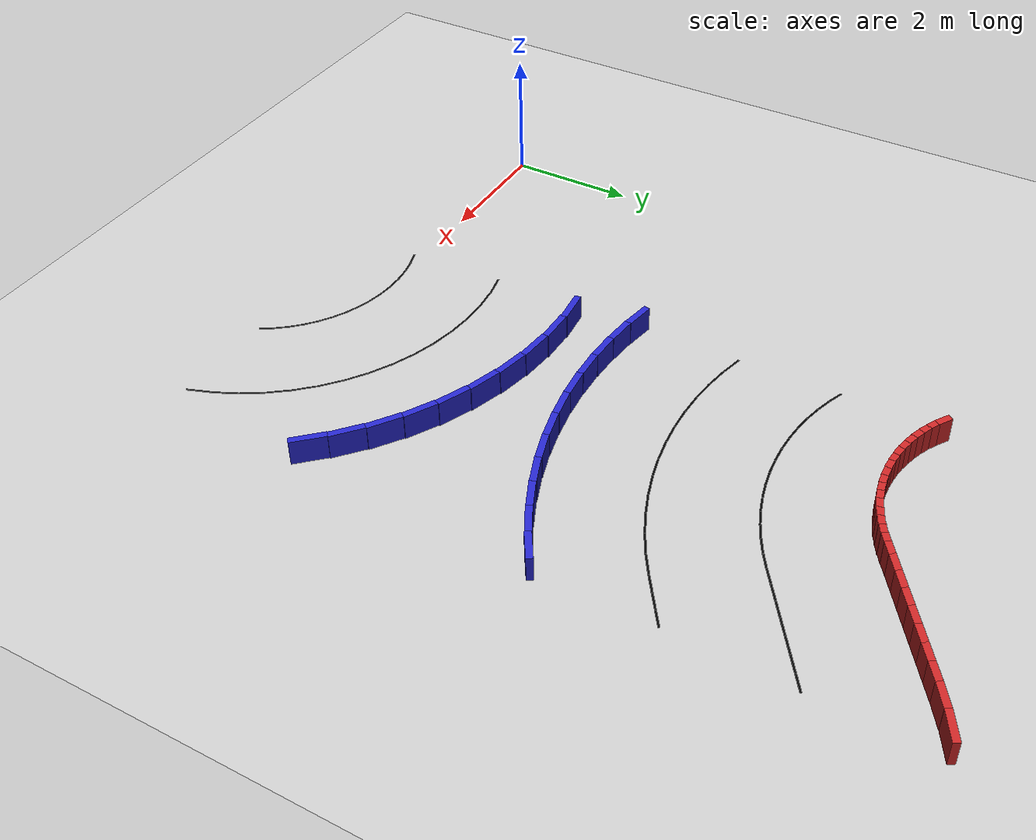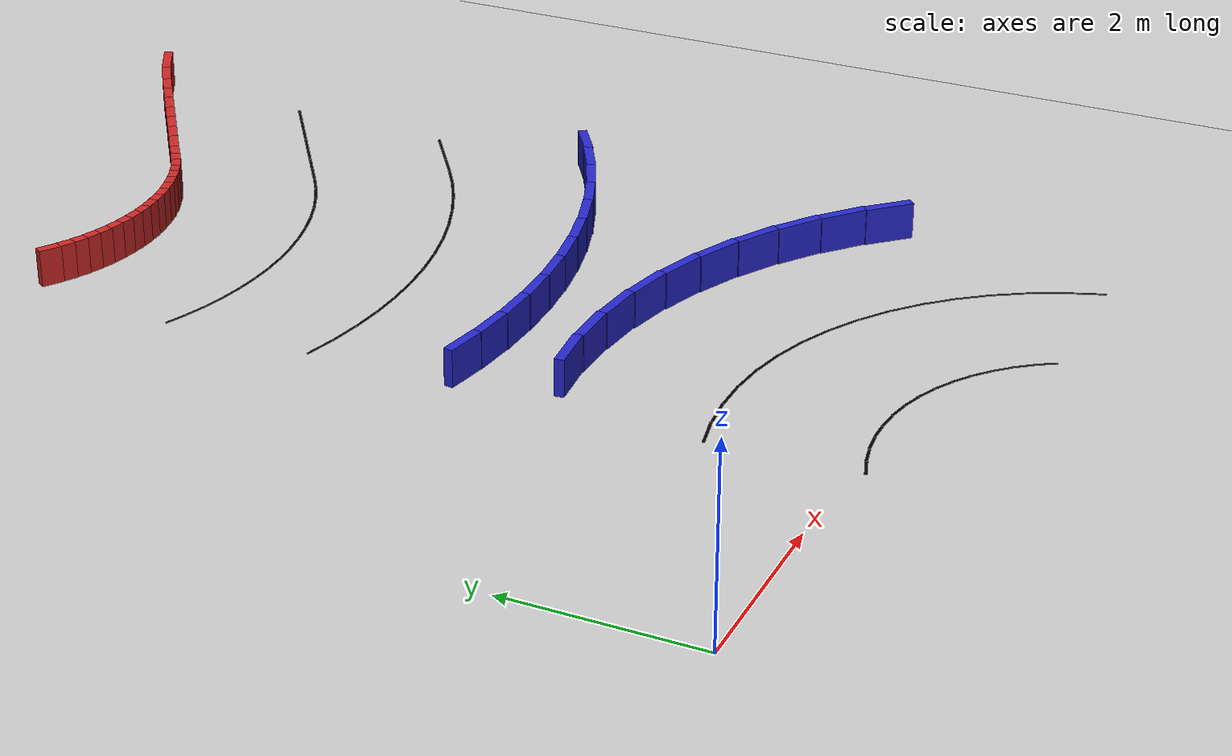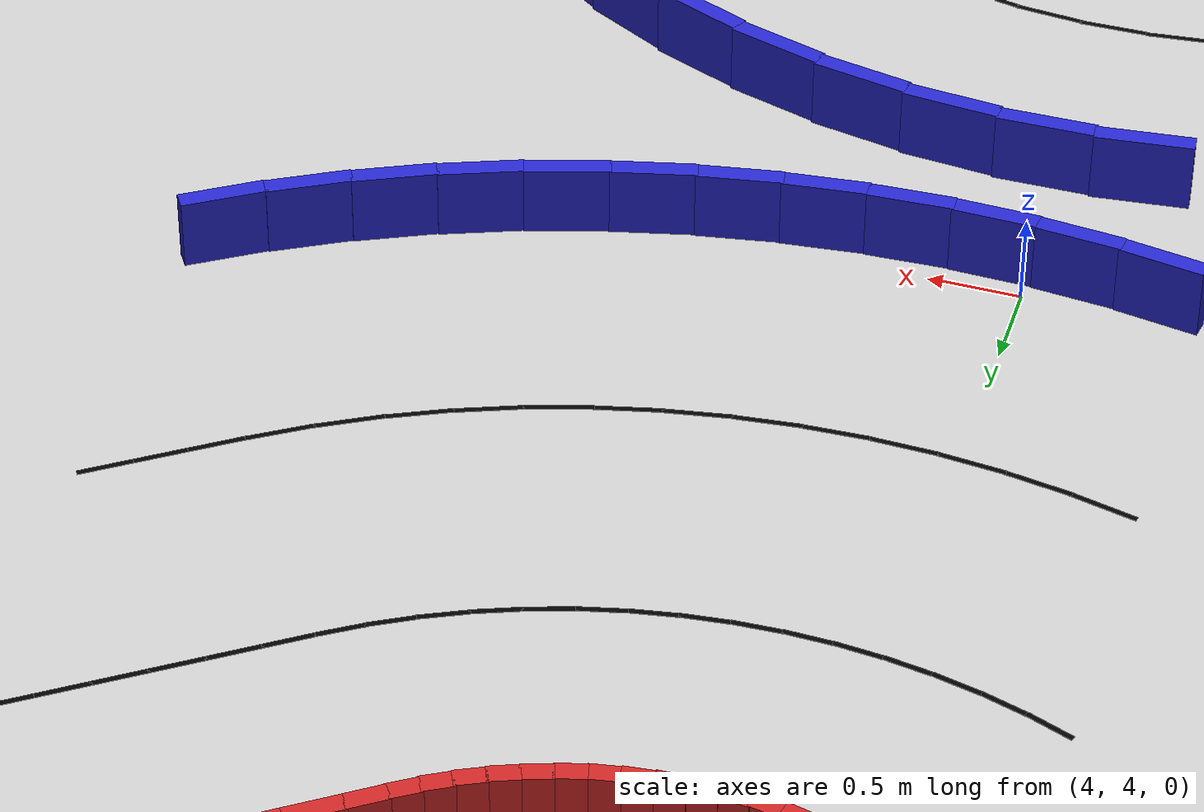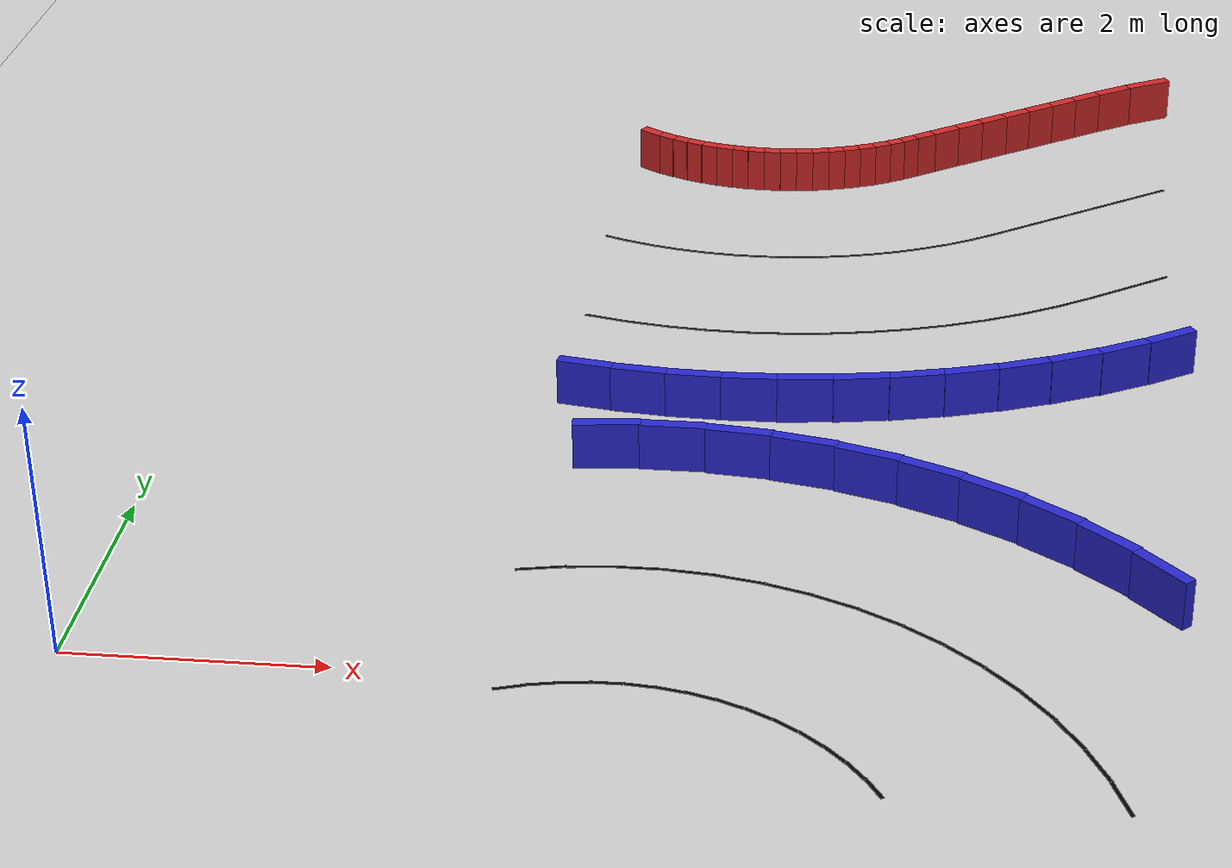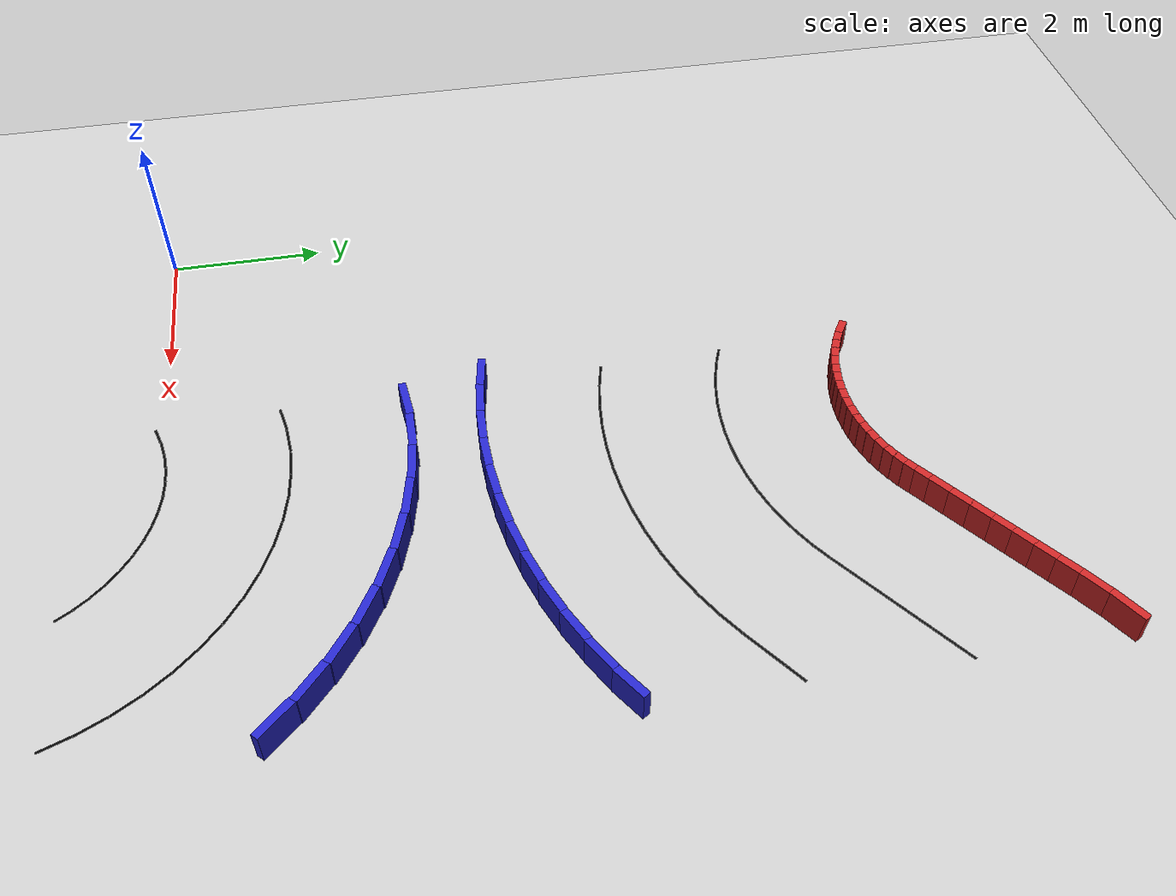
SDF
<sdf version="1.6">
 <world name="3lane_track">
  <include><uri>model://ground_plane</uri></include>
  <include><uri>model://sun</uri></include>
  <model name="iw_88">
   <static>true</static>
   <pose>3.5831 2.9750 0.200 0 0 0.1013</pose>
   <link name="l">
    <collision name="c"><geometry><box><size>0.5416 0.1 0.4</size></box></geometry></collision>
    <visual name="v">
     <geometry><box><size>0.5416 0.1 0.4</size></box></geometry>
     <material><ambient>0.15 0.15 0.8 1</ambient><diffuse>0.15 0.15 0.8 1</diffuse></material>
    </visual>
   </link>
  </model>
  <model name="iw_89">
   <static>true</static>
   <pose>4.1138 2.9904 0.200 0 0 0.0000</pose>
   <link name="l">
    <collision name="c"><geometry><box><size>0.5416 0.1 0.4</size></box></geometry></collision>
    <visual name="v">
     <geometry><box><size>0.5416 0.1 0.4</size></box></geometry>
     <material><ambient>0.15 0.15 0.8 1</ambient><diffuse>0.15 0.15 0.8 1</diffuse></material>
    </visual>
   </link>
  </model>
  <model name="iw_90">
   <static>true</static>
   <pose>4.6434 2.9520 0.200 0 0 -0.1013</pose>
   <link name="l">
    <collision name="c"><geometry><box><size>0.5416 0.1 0.4</size></box></geometry></collision>
    <visual name="v">
     <geometry><box><size>0.5416 0.1 0.4</size></box></geometry>
     <material><ambient>0.15 0.15 0.8 1</ambient><diffuse>0.15 0.15 0.8 1</diffuse></material>
    </visual>
   </link>
  </model>
  <model name="iw_91">
   <static>true</static>
   <pose>5.1664 2.8602 0.200 0 0 -0.2027</pose>
   <link name="l">
    <collision name="c"><geometry><box><size>0.5416 0.1 0.4</size></box></geometry></collision>
    <visual name="v">
     <geometry><box><size>0.5416 0.1 0.4</size></box></geometry>
     <material><ambient>0.15 0.15 0.8 1</ambient><diffuse>0.15 0.15 0.8 1</diffuse></material>
    </visual>
   </link>
  </model>
  <model name="iw_92">
   <static>true</static>
   <pose>5.6774 2.7160 0.200 0 0 -0.3040</pose>
   <link name="l">
    <collision name="c"><geometry><box><size>0.5416 0.1 0.4</size></box></geometry></collision>
    <visual name="v">
     <geometry><box><size>0.5416 0.1 0.4</size></box></geometry>
     <material><ambient>0.15 0.15 0.8 1</ambient><diffuse>0.15 0.15 0.8 1</diffuse></material>
    </visual>
   </link>
  </model>
  <model name="iw_93">
   <static>true</static>
   <pose>6.1712 2.5208 0.200 0 0 -0.4054</pose>
   <link name="l">
    <collision name="c"><geometry><box><size>0.5416 0.1 0.4</size></box></geometry></collision>
    <visual name="v">
     <geometry><box><size>0.5416 0.1 0.4</size></box></geometry>
     <material><ambient>0.15 0.15 0.8 1</ambient><diffuse>0.15 0.15 0.8 1</diffuse></material>
    </visual>
   </link>
  </model>
  <model name="iw_94">
   <static>true</static>
   <pose>6.6427 2.2767 0.200 0 0 -0.5067</pose>
   <link name="l">
    <collision name="c"><geometry><box><size>0.5416 0.1 0.4</size></box></geometry></collision>
    <visual name="v">
     <geometry><box><size>0.5416 0.1 0.4</size></box></geometry>
     <material><ambient>0.15 0.15 0.8 1</ambient><diffuse>0.15 0.15 0.8 1</diffuse></material>
    </visual>
   </link>
  </model>
  <model name="iw_95">
   <static>true</static>
   <pose>7.0871 1.9861 0.200 0 0 -0.6081</pose>
   <link name="l">
    <collision name="c"><geometry><box><size>0.5416 0.1 0.4</size></box></geometry></collision>
    <visual name="v">
     <geometry><box><size>0.5416 0.1 0.4</size></box></geometry>
     <material><ambient>0.15 0.15 0.8 1</ambient><diffuse>0.15 0.15 0.8 1</diffuse></material>
    </visual>
   </link>
  </model>
  <model name="iw_96">
   <static>true</static>
   <pose>7.4998 1.6520 0.200 0 0 -0.7094</pose>
   <link name="l">
    <collision name="c"><geometry><box><size>0.5416 0.1 0.4</size></box></geometry></collision>
    <visual name="v">
     <geometry><box><size>0.5416 0.1 0.4</size></box></geometry>
     <material><ambient>0.15 0.15 0.8 1</ambient><diffuse>0.15 0.15 0.8 1</diffuse></material>
    </visual>
   </link>
  </model>
  <model name="iw_97">
   <static>true</static>
   <pose>7.8766 1.2780 0.200 0 0 -0.8107</pose>
   <link name="l">
    <collision name="c"><geometry><box><size>0.5416 0.1 0.4</size></box></geometry></collision>
    <visual name="v">
     <geometry><box><size>0.5416 0.1 0.4</size></box></geometry>
     <material><ambient>0.15 0.15 0.8 1</ambient><diffuse>0.15 0.15 0.8 1</diffuse></material>
    </visual>
   </link>
  </model>
  <model name="iw_237">
   <static>true</static>
   <pose>8.1097 4.8871 0.200 0 0 -2.5647</pose>
   <link name="l">
    <collision name="c"><geometry><box><size>0.4680 0.1 0.4</size></box></geometry></collision>
    <visual name="v">
     <geometry><box><size>0.4680 0.1 0.4</size></box></geometry>
     <material><ambient>0.15 0.15 0.8 1</ambient><diffuse>0.15 0.15 0.8 1</diffuse></material>
    </visual>
   </link>
  </model>
  <model name="iw_238">
   <static>true</static>
   <pose>7.7152 4.6550 0.200 0 0 -2.6325</pose>
   <link name="l">
    <collision name="c"><geometry><box><size>0.4680 0.1 0.4</size></box></geometry></collision>
    <visual name="v">
     <geometry><box><size>0.4680 0.1 0.4</size></box></geometry>
     <material><ambient>0.15 0.15 0.8 1</ambient><diffuse>0.15 0.15 0.8 1</diffuse></material>
    </visual>
   </link>
  </model>
  <model name="iw_239">
   <static>true</static>
   <pose>7.3058 4.4503 0.200 0 0 -2.7004</pose>
   <link name="l">
    <collision name="c"><geometry><box><size>0.4680 0.1 0.4</size></box></geometry></collision>
    <visual name="v">
     <geometry><box><size>0.4680 0.1 0.4</size></box></geometry>
     <material><ambient>0.15 0.15 0.8 1</ambient><diffuse>0.15 0.15 0.8 1</diffuse></material>
    </visual>
   </link>
  </model>
  <model name="iw_240">
   <static>true</static>
   <pose>6.8835 4.2737 0.200 0 0 -2.7683</pose>
   <link name="l">
    <collision name="c"><geometry><box><size>0.4680 0.1 0.4</size></box></geometry></collision>
    <visual name="v">
     <geometry><box><size>0.4680 0.1 0.4</size></box></geometry>
     <material><ambient>0.15 0.15 0.8 1</ambient><diffuse>0.15 0.15 0.8 1</diffuse></material>
    </visual>
   </link>
  </model>
  <model name="iw_241">
   <static>true</static>
   <pose>6.4502 4.1262 0.200 0 0 -2.8362</pose>
   <link name="l">
    <collision name="c"><geometry><box><size>0.4680 0.1 0.4</size></box></geometry></collision>
    <visual name="v">
     <geometry><box><size>0.4680 0.1 0.4</size></box></geometry>
     <material><ambient>0.15 0.15 0.8 1</ambient><diffuse>0.15 0.15 0.8 1</diffuse></material>
    </visual>
   </link>
  </model>
  <model name="iw_242">
   <static>true</static>
   <pose>6.0078 4.0085 0.200 0 0 -2.9040</pose>
   <link name="l">
    <collision name="c"><geometry><box><size>0.4680 0.1 0.4</size></box></geometry></collision>
    <visual name="v">
     <geometry><box><size>0.4680 0.1 0.4</size></box></geometry>
     <material><ambient>0.15 0.15 0.8 1</ambient><diffuse>0.15 0.15 0.8 1</diffuse></material>
    </visual>
   </link>
  </model>
  <model name="iw_243">
   <static>true</static>
   <pose>5.5585 3.9210 0.200 0 0 -2.9719</pose>
   <link name="l">
    <collision name="c"><geometry><box><size>0.4680 0.1 0.4</size></box></geometry></collision>
    <visual name="v">
     <geometry><box><size>0.4680 0.1 0.4</size></box></geometry>
     <material><ambient>0.15 0.15 0.8 1</ambient><diffuse>0.15 0.15 0.8 1</diffuse></material>
    </visual>
   </link>
  </model>
  <model name="iw_244">
   <static>true</static>
   <pose>5.1043 3.8642 0.200 0 0 -3.0398</pose>
   <link name="l">
    <collision name="c"><geometry><box><size>0.4680 0.1 0.4</size></box></geometry></collision>
    <visual name="v">
     <geometry><box><size>0.4680 0.1 0.4</size></box></geometry>
     <material><ambient>0.15 0.15 0.8 1</ambient><diffuse>0.15 0.15 0.8 1</diffuse></material>
    </visual>
   </link>
  </model>
  <model name="iw_245">
   <static>true</static>
   <pose>4.6473 3.8383 0.200 0 0 -3.1077</pose>
   <link name="l">
    <collision name="c"><geometry><box><size>0.4680 0.1 0.4</size></box></geometry></collision>
    <visual name="v">
     <geometry><box><size>0.4680 0.1 0.4</size></box></geometry>
     <material><ambient>0.15 0.15 0.8 1</ambient><diffuse>0.15 0.15 0.8 1</diffuse></material>
    </visual>
   </link>
  </model>
  <model name="iw_246">
   <static>true</static>
   <pose>4.1896 3.8435 0.200 0 0 3.1077</pose>
   <link name="l">
    <collision name="c"><geometry><box><size>0.4680 0.1 0.4</size></box></geometry></collision>
    <visual name="v">
     <geometry><box><size>0.4680 0.1 0.4</size></box></geometry>
     <material><ambient>0.15 0.15 0.8 1</ambient><diffuse>0.15 0.15 0.8 1</diffuse></material>
    </visual>
   </link>
  </model>
  <model name="iw_247">
   <static>true</static>
   <pose>3.7333 3.8797 0.200 0 0 3.0398</pose>
   <link name="l">
    <collision name="c"><geometry><box><size>0.4680 0.1 0.4</size></box></geometry></collision>
    <visual name="v">
     <geometry><box><size>0.4680 0.1 0.4</size></box></geometry>
     <material><ambient>0.15 0.15 0.8 1</ambient><diffuse>0.15 0.15 0.8 1</diffuse></material>
    </visual>
   </link>
  </model>
  <model name="iw_248">
   <static>true</static>
   <pose>3.2805 3.9468 0.200 0 0 2.9719</pose>
   <link name="l">
    <collision name="c"><geometry><box><size>0.4680 0.1 0.4</size></box></geometry></collision>
    <visual name="v">
     <geometry><box><size>0.4680 0.1 0.4</size></box></geometry>
     <material><ambient>0.15 0.15 0.8 1</ambient><diffuse>0.15 0.15 0.8 1</diffuse></material>
    </visual>
   </link>
  </model>
  <model name="ow_227">
   <static>true</static>
   <pose>8.1463 10.3524 0.200 0 0 -2.6325</pose>
   <link name="l">
    <collision name="c"><geometry><box><size>0.4680 0.1 0.4</size></box></geometry></collision>
    <visual name="v">
     <geometry><box><size>0.4680 0.1 0.4</size></box></geometry>
     <material><ambient>0.8 0.15 0.15 1</ambient><diffuse>0.8 0.15 0.15 1</diffuse></material>
    </visual>
   </link>
  </model>
  <model name="ow_228">
   <static>true</static>
   <pose>7.7880 10.1339 0.200 0 0 -2.5647</pose>
   <link name="l">
    <collision name="c"><geometry><box><size>0.3917 0.1 0.4</size></box></geometry></collision>
    <visual name="v">
     <geometry><box><size>0.3917 0.1 0.4</size></box></geometry>
     <material><ambient>0.8 0.15 0.15 1</ambient><diffuse>0.8 0.15 0.15 1</diffuse></material>
    </visual>
   </link>
  </model>
  <model name="ow_229">
   <static>true</static>
   <pose>7.5132 9.9486 0.200 0 0 -2.5307</pose>
   <link name="l">
    <collision name="c"><geometry><box><size>0.2912 0.1 0.4</size></box></geometry></collision>
    <visual name="v">
     <geometry><box><size>0.2912 0.1 0.4</size></box></geometry>
     <material><ambient>0.8 0.15 0.15 1</ambient><diffuse>0.8 0.15 0.15 1</diffuse></material>
    </visual>
   </link>
  </model>
  <model name="ow_230">
   <static>true</static>
   <pose>7.2828 9.7873 0.200 0 0 -2.5307</pose>
   <link name="l">
    <collision name="c"><geometry><box><size>0.2912 0.1 0.4</size></box></geometry></collision>
    <visual name="v">
     <geometry><box><size>0.2912 0.1 0.4</size></box></geometry>
     <material><ambient>0.8 0.15 0.15 1</ambient><diffuse>0.8 0.15 0.15 1</diffuse></material>
    </visual>
   </link>
  </model>
  <model name="ow_231">
   <static>true</static>
   <pose>7.0524 9.6260 0.200 0 0 -2.5307</pose>
   <link name="l">
    <collision name="c"><geometry><box><size>0.2913 0.1 0.4</size></box></geometry></collision>
    <visual name="v">
     <geometry><box><size>0.2913 0.1 0.4</size></box></geometry>
     <material><ambient>0.8 0.15 0.15 1</ambient><diffuse>0.8 0.15 0.15 1</diffuse></material>
    </visual>
   </link>
  </model>
  <model name="ow_232">
   <static>true</static>
   <pose>6.8220 9.4647 0.200 0 0 -2.5307</pose>
   <link name="l">
    <collision name="c"><geometry><box><size>0.2913 0.1 0.4</size></box></geometry></collision>
    <visual name="v">
     <geometry><box><size>0.2913 0.1 0.4</size></box></geometry>
     <material><ambient>0.8 0.15 0.15 1</ambient><diffuse>0.8 0.15 0.15 1</diffuse></material>
    </visual>
   </link>
  </model>
  <model name="ow_233">
   <static>true</static>
   <pose>6.5916 9.3033 0.200 0 0 -2.5307</pose>
   <link name="l">
    <collision name="c"><geometry><box><size>0.2912 0.1 0.4</size></box></geometry></collision>
    <visual name="v">
     <geometry><box><size>0.2912 0.1 0.4</size></box></geometry>
     <material><ambient>0.8 0.15 0.15 1</ambient><diffuse>0.8 0.15 0.15 1</diffuse></material>
    </visual>
   </link>
  </model>
  <model name="ow_234">
   <static>true</static>
   <pose>6.3612 9.1420 0.200 0 0 -2.5307</pose>
   <link name="l">
    <collision name="c"><geometry><box><size>0.2912 0.1 0.4</size></box></geometry></collision>
    <visual name="v">
     <geometry><box><size>0.2912 0.1 0.4</size></box></geometry>
     <material><ambient>0.8 0.15 0.15 1</ambient><diffuse>0.8 0.15 0.15 1</diffuse></material>
    </visual>
   </link>
  </model>
  <model name="ow_235">
   <static>true</static>
   <pose>6.1308 8.9807 0.200 0 0 -2.5307</pose>
   <link name="l">
    <collision name="c"><geometry><box><size>0.2913 0.1 0.4</size></box></geometry></collision>
    <visual name="v">
     <geometry><box><size>0.2913 0.1 0.4</size></box></geometry>
     <material><ambient>0.8 0.15 0.15 1</ambient><diffuse>0.8 0.15 0.15 1</diffuse></material>
    </visual>
   </link>
  </model>
  <model name="ow_236">
   <static>true</static>
   <pose>5.9321 8.8408 0.200 0 0 -2.5307</pose>
   <link name="l">
    <collision name="c"><geometry><box><size>0.2149 0.1 0.4</size></box></geometry></collision>
    <visual name="v">
     <geometry><box><size>0.2149 0.1 0.4</size></box></geometry>
     <material><ambient>0.8 0.15 0.15 1</ambient><diffuse>0.8 0.15 0.15 1</diffuse></material>
    </visual>
   </link>
  </model>
  <model name="ow_237">
   <static>true</static>
   <pose>5.7859 8.7376 0.200 0 0 -2.5647</pose>
   <link name="l">
    <collision name="c"><geometry><box><size>0.1629 0.1 0.4</size></box></geometry></collision>
    <visual name="v">
     <geometry><box><size>0.1629 0.1 0.4</size></box></geometry>
     <material><ambient>0.8 0.15 0.15 1</ambient><diffuse>0.8 0.15 0.15 1</diffuse></material>
    </visual>
   </link>
  </model>
  <model name="ow_238">
   <static>true</static>
   <pose>5.6579 8.6543 0.200 0 0 -2.6325</pose>
   <link name="l">
    <collision name="c"><geometry><box><size>0.1629 0.1 0.4</size></box></geometry></collision>
    <visual name="v">
     <geometry><box><size>0.1629 0.1 0.4</size></box></geometry>
     <material><ambient>0.8 0.15 0.15 1</ambient><diffuse>0.8 0.15 0.15 1</diffuse></material>
    </visual>
   </link>
  </model>
  <model name="ow_239">
   <static>true</static>
   <pose>5.5245 8.5798 0.200 0 0 -2.7004</pose>
   <link name="l">
    <collision name="c"><geometry><box><size>0.1629 0.1 0.4</size></box></geometry></collision>
    <visual name="v">
     <geometry><box><size>0.1629 0.1 0.4</size></box></geometry>
     <material><ambient>0.8 0.15 0.15 1</ambient><diffuse>0.8 0.15 0.15 1</diffuse></material>
    </visual>
   </link>
  </model>
  <model name="ow_240">
   <static>true</static>
   <pose>5.3863 8.5146 0.200 0 0 -2.7683</pose>
   <link name="l">
    <collision name="c"><geometry><box><size>0.1629 0.1 0.4</size></box></geometry></collision>
    <visual name="v">
     <geometry><box><size>0.1629 0.1 0.4</size></box></geometry>
     <material><ambient>0.8 0.15 0.15 1</ambient><diffuse>0.8 0.15 0.15 1</diffuse></material>
    </visual>
   </link>
  </model>
  <model name="ow_241">
   <static>true</static>
   <pose>5.2441 8.4589 0.200 0 0 -2.8362</pose>
   <link name="l">
    <collision name="c"><geometry><box><size>0.1629 0.1 0.4</size></box></geometry></collision>
    <visual name="v">
     <geometry><box><size>0.1629 0.1 0.4</size></box></geometry>
     <material><ambient>0.8 0.15 0.15 1</ambient><diffuse>0.8 0.15 0.15 1</diffuse></material>
    </visual>
   </link>
  </model>
  <model name="ow_242">
   <static>true</static>
   <pose>5.0984 8.4130 0.200 0 0 -2.9040</pose>
   <link name="l">
    <collision name="c"><geometry><box><size>0.1629 0.1 0.4</size></box></geometry></collision>
    <visual name="v">
     <geometry><box><size>0.1629 0.1 0.4</size></box></geometry>
     <material><ambient>0.8 0.15 0.15 1</ambient><diffuse>0.8 0.15 0.15 1</diffuse></material>
    </visual>
   </link>
  </model>
  <model name="ow_243">
   <static>true</static>
   <pose>4.9499 8.3770 0.200 0 0 -2.9719</pose>
   <link name="l">
    <collision name="c"><geometry><box><size>0.1629 0.1 0.4</size></box></geometry></collision>
    <visual name="v">
     <geometry><box><size>0.1629 0.1 0.4</size></box></geometry>
     <material><ambient>0.8 0.15 0.15 1</ambient><diffuse>0.8 0.15 0.15 1</diffuse></material>
    </visual>
   </link>
  </model>
  <model name="ow_244">
   <static>true</static>
   <pose>4.7993 8.3512 0.200 0 0 -3.0398</pose>
   <link name="l">
    <collision name="c"><geometry><box><size>0.1629 0.1 0.4</size></box></geometry></collision>
    <visual name="v">
     <geometry><box><size>0.1629 0.1 0.4</size></box></geometry>
     <material><ambient>0.8 0.15 0.15 1</ambient><diffuse>0.8 0.15 0.15 1</diffuse></material>
    </visual>
   </link>
  </model>
  <model name="ow_245">
   <static>true</static>
   <pose>4.6473 8.3357 0.200 0 0 -3.1077</pose>
   <link name="l">
    <collision name="c"><geometry><box><size>0.1629 0.1 0.4</size></box></geometry></collision>
    <visual name="v">
     <geometry><box><size>0.1629 0.1 0.4</size></box></geometry>
     <material><ambient>0.8 0.15 0.15 1</ambient><diffuse>0.8 0.15 0.15 1</diffuse></material>
    </visual>
   </link>
  </model>
  <model name="ow_246">
   <static>true</static>
   <pose>4.4946 8.3305 0.200 0 0 3.1077</pose>
   <link name="l">
    <collision name="c"><geometry><box><size>0.1629 0.1 0.4</size></box></geometry></collision>
    <visual name="v">
     <geometry><box><size>0.1629 0.1 0.4</size></box></geometry>
     <material><ambient>0.8 0.15 0.15 1</ambient><diffuse>0.8 0.15 0.15 1</diffuse></material>
    </visual>
   </link>
  </model>
  <model name="ow_247">
   <static>true</static>
   <pose>4.3419 8.3357 0.200 0 0 3.0398</pose>
   <link name="l">
    <collision name="c"><geometry><box><size>0.1629 0.1 0.4</size></box></geometry></collision>
    <visual name="v">
     <geometry><box><size>0.1629 0.1 0.4</size></box></geometry>
     <material><ambient>0.8 0.15 0.15 1</ambient><diffuse>0.8 0.15 0.15 1</diffuse></material>
    </visual>
   </link>
  </model>
  <model name="ow_248">
   <static>true</static>
   <pose>4.1900 8.3513 0.200 0 0 2.9719</pose>
   <link name="l">
    <collision name="c"><geometry><box><size>0.1629 0.1 0.4</size></box></geometry></collision>
    <visual name="v">
     <geometry><box><size>0.1629 0.1 0.4</size></box></geometry>
     <material><ambient>0.8 0.15 0.15 1</ambient><diffuse>0.8 0.15 0.15 1</diffuse></material>
    </visual>
   </link>
  </model>
  <model name="ow_249">
   <static>true</static>
   <pose>4.0394 8.3771 0.200 0 0 2.9040</pose>
   <link name="l">
    <collision name="c"><geometry><box><size>0.1629 0.1 0.4</size></box></geometry></collision>
    <visual name="v">
     <geometry><box><size>0.1629 0.1 0.4</size></box></geometry>
     <material><ambient>0.8 0.15 0.15 1</ambient><diffuse>0.8 0.15 0.15 1</diffuse></material>
    </visual>
   </link>
  </model>
  <model name="ow_250">
   <static>true</static>
   <pose>3.8909 8.4130 0.200 0 0 2.8362</pose>
   <link name="l">
    <collision name="c"><geometry><box><size>0.1629 0.1 0.4</size></box></geometry></collision>
    <visual name="v">
     <geometry><box><size>0.1629 0.1 0.4</size></box></geometry>
     <material><ambient>0.8 0.15 0.15 1</ambient><diffuse>0.8 0.15 0.15 1</diffuse></material>
    </visual>
   </link>
  </model>
  <model name="ow_251">
   <static>true</static>
   <pose>3.7452 8.4590 0.200 0 0 2.7683</pose>
   <link name="l">
    <collision name="c"><geometry><box><size>0.1629 0.1 0.4</size></box></geometry></collision>
    <visual name="v">
     <geometry><box><size>0.1629 0.1 0.4</size></box></geometry>
     <material><ambient>0.8 0.15 0.15 1</ambient><diffuse>0.8 0.15 0.15 1</diffuse></material>
    </visual>
   </link>
  </model>
  <model name="ow_252">
   <static>true</static>
   <pose>3.6029 8.5147 0.200 0 0 2.7004</pose>
   <link name="l">
    <collision name="c"><geometry><box><size>0.1629 0.1 0.4</size></box></geometry></collision>
    <visual name="v">
     <geometry><box><size>0.1629 0.1 0.4</size></box></geometry>
     <material><ambient>0.8 0.15 0.15 1</ambient><diffuse>0.8 0.15 0.15 1</diffuse></material>
    </visual>
   </link>
  </model>
  <model name="ow_253">
   <static>true</static>
   <pose>3.4648 8.5799 0.200 0 0 2.6325</pose>
   <link name="l">
    <collision name="c"><geometry><box><size>0.1629 0.1 0.4</size></box></geometry></collision>
    <visual name="v">
     <geometry><box><size>0.1629 0.1 0.4</size></box></geometry>
     <material><ambient>0.8 0.15 0.15 1</ambient><diffuse>0.8 0.15 0.15 1</diffuse></material>
    </visual>
   </link>
  </model>
  <model name="ow_254">
   <static>true</static>
   <pose>3.3005 8.6768 0.200 0 0 2.5647</pose>
   <link name="l">
    <collision name="c"><geometry><box><size>0.2390 0.1 0.4</size></box></geometry></collision>
    <visual name="v">
     <geometry><box><size>0.2390 0.1 0.4</size></box></geometry>
     <material><ambient>0.8 0.15 0.15 1</ambient><diffuse>0.8 0.15 0.15 1</diffuse></material>
    </visual>
   </link>
  </model>
  <model name="line_173">
   <static>true</static>
   <pose>3.2908 -0.1164 0.002 0 0 0.3040</pose>
   <link name="l">
    <visual name="v">
     <geometry><box><size>0.2381 0.03 0.002</size></box></geometry>
     <material><ambient>0 0 0 1</ambient><diffuse>0 0 0 1</diffuse></material>
    </visual>
   </link>
  </model>
  <model name="line_174">
   <static>true</static>
   <pose>3.2835 1.4252 0.002 0 0 0.2027</pose>
   <link name="l">
    <visual name="v">
     <geometry><box><size>0.3898 0.03 0.002</size></box></geometry>
     <material><ambient>0 0 0 1</ambient><diffuse>0 0 0 1</diffuse></material>
    </visual>
   </link>
  </model>
  <model name="line_175">
   <static>true</static>
   <pose>3.5103 -0.0556 0.002 0 0 0.2027</pose>
   <link name="l">
    <visual name="v">
     <geometry><box><size>0.2381 0.03 0.002</size></box></geometry>
     <material><ambient>0 0 0 1</ambient><diffuse>0 0 0 1</diffuse></material>
    </visual>
   </link>
  </model>
  <model name="line_176">
   <static>true</static>
   <pose>3.6589 1.4789 0.002 0 0 0.1013</pose>
   <link name="l">
    <visual name="v">
     <geometry><box><size>0.3898 0.03 0.002</size></box></geometry>
     <material><ambient>0 0 0 1</ambient><diffuse>0 0 0 1</diffuse></material>
    </visual>
   </link>
  </model>
  <model name="line_177">
   <static>true</static>
   <pose>3.7348 -0.0173 0.002 0 0 0.1013</pose>
   <link name="l">
    <visual name="v">
     <geometry><box><size>0.2381 0.03 0.002</size></box></geometry>
     <material><ambient>0 0 0 1</ambient><diffuse>0 0 0 1</diffuse></material>
    </visual>
   </link>
  </model>
  <model name="line_178">
   <static>true</static>
   <pose>4.0379 1.4942 0.002 0 0 0.0000</pose>
   <link name="l">
    <visual name="v">
     <geometry><box><size>0.3898 0.03 0.002</size></box></geometry>
     <material><ambient>0 0 0 1</ambient><diffuse>0 0 0 1</diffuse></material>
    </visual>
   </link>
  </model>
  <model name="line_179">
   <static>true</static>
   <pose>3.9621 -0.0019 0.002 0 0 0.0000</pose>
   <link name="l">
    <visual name="v">
     <geometry><box><size>0.2381 0.03 0.002</size></box></geometry>
     <material><ambient>0 0 0 1</ambient><diffuse>0 0 0 1</diffuse></material>
    </visual>
   </link>
  </model>
  <model name="line_180">
   <static>true</static>
   <pose>4.4165 1.4712 0.002 0 0 -0.1013</pose>
   <link name="l">
    <visual name="v">
     <geometry><box><size>0.3898 0.03 0.002</size></box></geometry>
     <material><ambient>0 0 0 1</ambient><diffuse>0 0 0 1</diffuse></material>
    </visual>
   </link>
  </model>
  <model name="line_181">
   <static>true</static>
   <pose>4.1897 -0.0096 0.002 0 0 -0.1013</pose>
   <link name="l">
    <visual name="v">
     <geometry><box><size>0.2381 0.03 0.002</size></box></geometry>
     <material><ambient>0 0 0 1</ambient><diffuse>0 0 0 1</diffuse></material>
    </visual>
   </link>
  </model>
  <model name="line_182">
   <static>true</static>
   <pose>4.7909 1.4099 0.002 0 0 -0.2027</pose>
   <link name="l">
    <visual name="v">
     <geometry><box><size>0.3898 0.03 0.002</size></box></geometry>
     <material><ambient>0 0 0 1</ambient><diffuse>0 0 0 1</diffuse></material>
    </visual>
   </link>
  </model>
  <model name="line_183">
   <static>true</static>
   <pose>4.4154 -0.0403 0.002 0 0 -0.2027</pose>
   <link name="l">
    <visual name="v">
     <geometry><box><size>0.2381 0.03 0.002</size></box></geometry>
     <material><ambient>0 0 0 1</ambient><diffuse>0 0 0 1</diffuse></material>
    </visual>
   </link>
  </model>
  <model name="line_184">
   <static>true</static>
   <pose>5.1571 1.3112 0.002 0 0 -0.3040</pose>
   <link name="l">
    <visual name="v">
     <geometry><box><size>0.3898 0.03 0.002</size></box></geometry>
     <material><ambient>0 0 0 1</ambient><diffuse>0 0 0 1</diffuse></material>
    </visual>
   </link>
  </model>
  <model name="line_185">
   <static>true</static>
   <pose>4.6368 -0.0937 0.002 0 0 -0.3040</pose>
   <link name="l">
    <visual name="v">
     <geometry><box><size>0.2381 0.03 0.002</size></box></geometry>
     <material><ambient>0 0 0 1</ambient><diffuse>0 0 0 1</diffuse></material>
    </visual>
   </link>
  </model>
  <model name="line_186">
   <static>true</static>
   <pose>5.5114 1.1758 0.002 0 0 -0.4054</pose>
   <link name="l">
    <visual name="v">
     <geometry><box><size>0.3898 0.03 0.002</size></box></geometry>
     <material><ambient>0 0 0 1</ambient><diffuse>0 0 0 1</diffuse></material>
    </visual>
   </link>
  </model>
  <model name="line_187">
   <static>true</static>
   <pose>4.8517 -0.1692 0.002 0 0 -0.4054</pose>
   <link name="l">
    <visual name="v">
     <geometry><box><size>0.2381 0.03 0.002</size></box></geometry>
     <material><ambient>0 0 0 1</ambient><diffuse>0 0 0 1</diffuse></material>
    </visual>
   </link>
  </model>
  <model name="line_188">
   <static>true</static>
   <pose>5.8503 1.0053 0.002 0 0 -0.5067</pose>
   <link name="l">
    <visual name="v">
     <geometry><box><size>0.3898 0.03 0.002</size></box></geometry>
     <material><ambient>0 0 0 1</ambient><diffuse>0 0 0 1</diffuse></material>
    </visual>
   </link>
  </model>
  <model name="line_189">
   <static>true</static>
   <pose>5.0578 -0.2660 0.002 0 0 -0.5067</pose>
   <link name="l">
    <visual name="v">
     <geometry><box><size>0.2381 0.03 0.002</size></box></geometry>
     <material><ambient>0 0 0 1</ambient><diffuse>0 0 0 1</diffuse></material>
    </visual>
   </link>
  </model>
  <model name="line_190">
   <static>true</static>
   <pose>6.1701 0.8015 0.002 0 0 -0.6081</pose>
   <link name="l">
    <visual name="v">
     <geometry><box><size>0.3898 0.03 0.002</size></box></geometry>
     <material><ambient>0 0 0 1</ambient><diffuse>0 0 0 1</diffuse></material>
    </visual>
   </link>
  </model>
  <model name="line_191">
   <static>true</static>
   <pose>5.2531 -0.3832 0.002 0 0 -0.6081</pose>
   <link name="l">
    <visual name="v">
     <geometry><box><size>0.2381 0.03 0.002</size></box></geometry>
     <material><ambient>0 0 0 1</ambient><diffuse>0 0 0 1</diffuse></material>
    </visual>
   </link>
  </model>
  <model name="line_192">
   <static>true</static>
   <pose>6.4677 0.5662 0.002 0 0 -0.7094</pose>
   <link name="l">
    <visual name="v">
     <geometry><box><size>0.3898 0.03 0.002</size></box></geometry>
     <material><ambient>0 0 0 1</ambient><diffuse>0 0 0 1</diffuse></material>
    </visual>
   </link>
  </model>
  <model name="line_193">
   <static>true</static>
   <pose>5.4355 -0.5195 0.002 0 0 -0.7094</pose>
   <link name="l">
    <visual name="v">
     <geometry><box><size>0.2381 0.03 0.002</size></box></geometry>
     <material><ambient>0 0 0 1</ambient><diffuse>0 0 0 1</diffuse></material>
    </visual>
   </link>
  </model>
  <model name="line_194">
   <static>true</static>
   <pose>6.7399 0.3022 0.002 0 0 -0.8107</pose>
   <link name="l">
    <visual name="v">
     <geometry><box><size>0.3898 0.03 0.002</size></box></geometry>
     <material><ambient>0 0 0 1</ambient><diffuse>0 0 0 1</diffuse></material>
    </visual>
   </link>
  </model>
  <model name="line_195">
   <static>true</static>
   <pose>5.6032 -0.6737 0.002 0 0 -0.8107</pose>
   <link name="l">
    <visual name="v">
     <geometry><box><size>0.2381 0.03 0.002</size></box></geometry>
     <material><ambient>0 0 0 1</ambient><diffuse>0 0 0 1</diffuse></material>
    </visual>
   </link>
  </model>
  <model name="line_196">
   <static>true</static>
   <pose>6.9841 0.0119 0.002 0 0 -0.9121</pose>
   <link name="l">
    <visual name="v">
     <geometry><box><size>0.3898 0.03 0.002</size></box></geometry>
     <material><ambient>0 0 0 1</ambient><diffuse>0 0 0 1</diffuse></material>
    </visual>
   </link>
  </model>
  <model name="line_197">
   <static>true</static>
   <pose>5.7545 -0.8439 0.002 0 0 -0.9121</pose>
   <link name="l">
    <visual name="v">
     <geometry><box><size>0.2381 0.03 0.002</size></box></geometry>
     <material><ambient>0 0 0 1</ambient><diffuse>0 0 0 1</diffuse></material>
    </visual>
   </link>
  </model>
  <model name="line_198">
   <static>true</static>
   <pose>7.1976 -0.3016 0.002 0 0 -1.0134</pose>
   <link name="l">
    <visual name="v">
     <geometry><box><size>0.3898 0.03 0.002</size></box></geometry>
     <material><ambient>0 0 0 1</ambient><diffuse>0 0 0 1</diffuse></material>
    </visual>
   </link>
  </model>
  <model name="line_199">
   <static>true</static>
   <pose>5.8877 -1.0287 0.002 0 0 -1.0134</pose>
   <link name="l">
    <visual name="v">
     <geometry><box><size>0.2381 0.03 0.002</size></box></geometry>
     <material><ambient>0 0 0 1</ambient><diffuse>0 0 0 1</diffuse></material>
    </visual>
   </link>
  </model>
  <model name="line_200">
   <static>true</static>
   <pose>7.3783 -0.6351 0.002 0 0 -1.1148</pose>
   <link name="l">
    <visual name="v">
     <geometry><box><size>0.3898 0.03 0.002</size></box></geometry>
     <material><ambient>0 0 0 1</ambient><diffuse>0 0 0 1</diffuse></material>
    </visual>
   </link>
  </model>
  <model name="line_202">
   <static>true</static>
   <pose>7.5243 -0.9852 0.002 0 0 -1.2161</pose>
   <link name="l">
    <visual name="v">
     <geometry><box><size>0.3898 0.03 0.002</size></box></geometry>
     <material><ambient>0 0 0 1</ambient><diffuse>0 0 0 1</diffuse></material>
    </visual>
   </link>
  </model>
  <model name="line_461">
   <static>true</static>
   <pose>8.1431 8.5586 0.002 0 0 -2.5307</pose>
   <link name="l">
    <visual name="v">
     <geometry><box><size>0.2913 0.03 0.002</size></box></geometry>
     <material><ambient>0 0 0 1</ambient><diffuse>0 0 0 1</diffuse></material>
    </visual>
   </link>
  </model>
  <model name="line_463">
   <static>true</static>
   <pose>7.9128 8.3973 0.002 0 0 -2.5307</pose>
   <link name="l">
    <visual name="v">
     <geometry><box><size>0.2912 0.03 0.002</size></box></geometry>
     <material><ambient>0 0 0 1</ambient><diffuse>0 0 0 1</diffuse></material>
    </visual>
   </link>
  </model>
  <model name="line_465">
   <static>true</static>
   <pose>7.6824 8.2359 0.002 0 0 -2.5307</pose>
   <link name="l">
    <visual name="v">
     <geometry><box><size>0.2913 0.03 0.002</size></box></geometry>
     <material><ambient>0 0 0 1</ambient><diffuse>0 0 0 1</diffuse></material>
    </visual>
   </link>
  </model>
  <model name="line_467">
   <static>true</static>
   <pose>7.4520 8.0746 0.002 0 0 -2.5307</pose>
   <link name="l">
    <visual name="v">
     <geometry><box><size>0.2913 0.03 0.002</size></box></geometry>
     <material><ambient>0 0 0 1</ambient><diffuse>0 0 0 1</diffuse></material>
    </visual>
   </link>
  </model>
  <model name="line_468">
   <static>true</static>
   <pose>8.0820 6.6846 0.002 0 0 -2.5307</pose>
   <link name="l">
    <visual name="v">
     <geometry><box><size>0.2913 0.03 0.002</size></box></geometry>
     <material><ambient>0 0 0 1</ambient><diffuse>0 0 0 1</diffuse></material>
    </visual>
   </link>
  </model>
  <model name="line_469">
   <static>true</static>
   <pose>7.2216 7.9133 0.002 0 0 -2.5307</pose>
   <link name="l">
    <visual name="v">
     <geometry><box><size>0.2913 0.03 0.002</size></box></geometry>
     <material><ambient>0 0 0 1</ambient><diffuse>0 0 0 1</diffuse></material>
    </visual>
   </link>
  </model>
  <model name="line_470">
   <static>true</static>
   <pose>7.8516 6.5233 0.002 0 0 -2.5307</pose>
   <link name="l">
    <visual name="v">
     <geometry><box><size>0.2913 0.03 0.002</size></box></geometry>
     <material><ambient>0 0 0 1</ambient><diffuse>0 0 0 1</diffuse></material>
    </visual>
   </link>
  </model>
  <model name="line_471">
   <static>true</static>
   <pose>6.9912 7.7520 0.002 0 0 -2.5307</pose>
   <link name="l">
    <visual name="v">
     <geometry><box><size>0.2913 0.03 0.002</size></box></geometry>
     <material><ambient>0 0 0 1</ambient><diffuse>0 0 0 1</diffuse></material>
    </visual>
   </link>
  </model>
  <model name="line_472">
   <static>true</static>
   <pose>7.6106 6.3548 0.002 0 0 -2.5307</pose>
   <link name="l">
    <visual name="v">
     <geometry><box><size>0.3167 0.03 0.002</size></box></geometry>
     <material><ambient>0 0 0 1</ambient><diffuse>0 0 0 1</diffuse></material>
    </visual>
   </link>
  </model>
  <model name="line_473">
   <static>true</static>
   <pose>6.7714 7.5978 0.002 0 0 -2.5307</pose>
   <link name="l">
    <visual name="v">
     <geometry><box><size>0.2658 0.03 0.002</size></box></geometry>
     <material><ambient>0 0 0 1</ambient><diffuse>0 0 0 1</diffuse></material>
    </visual>
   </link>
  </model>
  <model name="line_474">
   <static>true</static>
   <pose>7.3351 6.1706 0.002 0 0 -2.5647</pose>
   <link name="l">
    <visual name="v">
     <geometry><box><size>0.3662 0.03 0.002</size></box></geometry>
     <material><ambient>0 0 0 1</ambient><diffuse>0 0 0 1</diffuse></material>
    </visual>
   </link>
  </model>
  <model name="line_475">
   <static>true</static>
   <pose>6.5605 7.4541 0.002 0 0 -2.5647</pose>
   <link name="l">
    <visual name="v">
     <geometry><box><size>0.2645 0.03 0.002</size></box></geometry>
     <material><ambient>0 0 0 1</ambient><diffuse>0 0 0 1</diffuse></material>
    </visual>
   </link>
  </model>
  <model name="line_476">
   <static>true</static>
   <pose>7.0294 5.9881 0.002 0 0 -2.6325</pose>
   <link name="l">
    <visual name="v">
     <geometry><box><size>0.3662 0.03 0.002</size></box></geometry>
     <material><ambient>0 0 0 1</ambient><diffuse>0 0 0 1</diffuse></material>
    </visual>
   </link>
  </model>
  <model name="line_477">
   <static>true</static>
   <pose>6.3437 7.3212 0.002 0 0 -2.6325</pose>
   <link name="l">
    <visual name="v">
     <geometry><box><size>0.2645 0.03 0.002</size></box></geometry>
     <material><ambient>0 0 0 1</ambient><diffuse>0 0 0 1</diffuse></material>
    </visual>
   </link>
  </model>
  <model name="line_478">
   <static>true</static>
   <pose>6.7120 5.8268 0.002 0 0 -2.7004</pose>
   <link name="l">
    <visual name="v">
     <geometry><box><size>0.3662 0.03 0.002</size></box></geometry>
     <material><ambient>0 0 0 1</ambient><diffuse>0 0 0 1</diffuse></material>
    </visual>
   </link>
  </model>
  <model name="line_479">
   <static>true</static>
   <pose>6.1183 7.2033 0.002 0 0 -2.7004</pose>
   <link name="l">
    <visual name="v">
     <geometry><box><size>0.2645 0.03 0.002</size></box></geometry>
     <material><ambient>0 0 0 1</ambient><diffuse>0 0 0 1</diffuse></material>
    </visual>
   </link>
  </model>
  <model name="line_480">
   <static>true</static>
   <pose>6.3844 5.6873 0.002 0 0 -2.7683</pose>
   <link name="l">
    <visual name="v">
     <geometry><box><size>0.3662 0.03 0.002</size></box></geometry>
     <material><ambient>0 0 0 1</ambient><diffuse>0 0 0 1</diffuse></material>
    </visual>
   </link>
  </model>
  <model name="line_481">
   <static>true</static>
   <pose>5.8854 7.1010 0.002 0 0 -2.7683</pose>
   <link name="l">
    <visual name="v">
     <geometry><box><size>0.2645 0.03 0.002</size></box></geometry>
     <material><ambient>0 0 0 1</ambient><diffuse>0 0 0 1</diffuse></material>
    </visual>
   </link>
  </model>
  <model name="line_482">
   <static>true</static>
   <pose>6.0481 5.5705 0.002 0 0 -2.8362</pose>
   <link name="l">
    <visual name="v">
     <geometry><box><size>0.3662 0.03 0.002</size></box></geometry>
     <material><ambient>0 0 0 1</ambient><diffuse>0 0 0 1</diffuse></material>
    </visual>
   </link>
  </model>
  <model name="line_483">
   <static>true</static>
   <pose>5.6461 7.0147 0.002 0 0 -2.8362</pose>
   <link name="l">
    <visual name="v">
     <geometry><box><size>0.2645 0.03 0.002</size></box></geometry>
     <material><ambient>0 0 0 1</ambient><diffuse>0 0 0 1</diffuse></material>
    </visual>
   </link>
  </model>
  <model name="line_484">
   <static>true</static>
   <pose>5.7047 5.4766 0.002 0 0 -2.9040</pose>
   <link name="l">
    <visual name="v">
     <geometry><box><size>0.3662 0.03 0.002</size></box></geometry>
     <material><ambient>0 0 0 1</ambient><diffuse>0 0 0 1</diffuse></material>
    </visual>
   </link>
  </model>
  <model name="line_485">
   <static>true</static>
   <pose>5.4015 6.9448 0.002 0 0 -2.9040</pose>
   <link name="l">
    <visual name="v">
     <geometry><box><size>0.2645 0.03 0.002</size></box></geometry>
     <material><ambient>0 0 0 1</ambient><diffuse>0 0 0 1</diffuse></material>
    </visual>
   </link>
  </model>
  <model name="line_486">
   <static>true</static>
   <pose>5.3556 5.4063 0.002 0 0 -2.9719</pose>
   <link name="l">
    <visual name="v">
     <geometry><box><size>0.3662 0.03 0.002</size></box></geometry>
     <material><ambient>0 0 0 1</ambient><diffuse>0 0 0 1</diffuse></material>
    </visual>
   </link>
  </model>
  <model name="line_487">
   <static>true</static>
   <pose>5.1528 6.8917 0.002 0 0 -2.9719</pose>
   <link name="l">
    <visual name="v">
     <geometry><box><size>0.2645 0.03 0.002</size></box></geometry>
     <material><ambient>0 0 0 1</ambient><diffuse>0 0 0 1</diffuse></material>
    </visual>
   </link>
  </model>
  <model name="line_488">
   <static>true</static>
   <pose>5.0027 5.3599 0.002 0 0 -3.0398</pose>
   <link name="l">
    <visual name="v">
     <geometry><box><size>0.3662 0.03 0.002</size></box></geometry>
     <material><ambient>0 0 0 1</ambient><diffuse>0 0 0 1</diffuse></material>
    </visual>
   </link>
  </model>
  <model name="line_489">
   <static>true</static>
   <pose>4.9010 6.8555 0.002 0 0 -3.0398</pose>
   <link name="l">
    <visual name="v">
     <geometry><box><size>0.2645 0.03 0.002</size></box></geometry>
     <material><ambient>0 0 0 1</ambient><diffuse>0 0 0 1</diffuse></material>
    </visual>
   </link>
  </model>
  <model name="line_490">
   <static>true</static>
   <pose>4.6473 5.3374 0.002 0 0 -3.1077</pose>
   <link name="l">
    <visual name="v">
     <geometry><box><size>0.3662 0.03 0.002</size></box></geometry>
     <material><ambient>0 0 0 1</ambient><diffuse>0 0 0 1</diffuse></material>
    </visual>
   </link>
  </model>
  <model name="line_491">
   <static>true</static>
   <pose>4.6473 6.8366 0.002 0 0 -3.1077</pose>
   <link name="l">
    <visual name="v">
     <geometry><box><size>0.2645 0.03 0.002</size></box></geometry>
     <material><ambient>0 0 0 1</ambient><diffuse>0 0 0 1</diffuse></material>
    </visual>
   </link>
  </model>
  <model name="line_492">
   <static>true</static>
   <pose>4.2913 5.3392 0.002 0 0 3.1077</pose>
   <link name="l">
    <visual name="v">
     <geometry><box><size>0.3662 0.03 0.002</size></box></geometry>
     <material><ambient>0 0 0 1</ambient><diffuse>0 0 0 1</diffuse></material>
    </visual>
   </link>
  </model>
  <model name="line_493">
   <static>true</static>
   <pose>4.3930 6.8348 0.002 0 0 3.1077</pose>
   <link name="l">
    <visual name="v">
     <geometry><box><size>0.2645 0.03 0.002</size></box></geometry>
     <material><ambient>0 0 0 1</ambient><diffuse>0 0 0 1</diffuse></material>
    </visual>
   </link>
  </model>
  <model name="line_494">
   <static>true</static>
   <pose>3.9362 5.3650 0.002 0 0 3.0398</pose>
   <link name="l">
    <visual name="v">
     <geometry><box><size>0.3662 0.03 0.002</size></box></geometry>
     <material><ambient>0 0 0 1</ambient><diffuse>0 0 0 1</diffuse></material>
    </visual>
   </link>
  </model>
  <model name="line_495">
   <static>true</static>
   <pose>4.1391 6.8504 0.002 0 0 3.0398</pose>
   <link name="l">
    <visual name="v">
     <geometry><box><size>0.2645 0.03 0.002</size></box></geometry>
     <material><ambient>0 0 0 1</ambient><diffuse>0 0 0 1</diffuse></material>
    </visual>
   </link>
  </model>
  <model name="line_496">
   <static>true</static>
   <pose>3.5837 5.4149 0.002 0 0 2.9719</pose>
   <link name="l">
    <visual name="v">
     <geometry><box><size>0.3662 0.03 0.002</size></box></geometry>
     <material><ambient>0 0 0 1</ambient><diffuse>0 0 0 1</diffuse></material>
    </visual>
   </link>
  </model>
  <model name="line_497">
   <static>true</static>
   <pose>3.8868 6.8831 0.002 0 0 2.9719</pose>
   <link name="l">
    <visual name="v">
     <geometry><box><size>0.2645 0.03 0.002</size></box></geometry>
     <material><ambient>0 0 0 1</ambient><diffuse>0 0 0 1</diffuse></material>
    </visual>
   </link>
  </model>
  <model name="line_498">
   <static>true</static>
   <pose>3.2353 5.4886 0.002 0 0 2.9040</pose>
   <link name="l">
    <visual name="v">
     <geometry><box><size>0.3662 0.03 0.002</size></box></geometry>
     <material><ambient>0 0 0 1</ambient><diffuse>0 0 0 1</diffuse></material>
    </visual>
   </link>
  </model>
  <model name="line_499">
   <static>true</static>
   <pose>3.6374 6.9328 0.002 0 0 2.9040</pose>
   <link name="l">
    <visual name="v">
     <geometry><box><size>0.2645 0.03 0.002</size></box></geometry>
     <material><ambient>0 0 0 1</ambient><diffuse>0 0 0 1</diffuse></material>
    </visual>
   </link>
  </model>
  <model name="line_501">
   <static>true</static>
   <pose>3.3918 6.9994 0.002 0 0 2.8362</pose>
   <link name="l">
    <visual name="v">
     <geometry><box><size>0.2645 0.03 0.002</size></box></geometry>
     <material><ambient>0 0 0 1</ambient><diffuse>0 0 0 1</diffuse></material>
    </visual>
   </link>
  </model>
  <model name="line_503">
   <static>true</static>
   <pose>3.1514 7.0824 0.002 0 0 2.7683</pose>
   <link name="l">
    <visual name="v">
     <geometry><box><size>0.2645 0.03 0.002</size></box></geometry>
     <material><ambient>0 0 0 1</ambient><diffuse>0 0 0 1</diffuse></material>
    </visual>
   </link>
  </model>
 </world>
</sdf>
